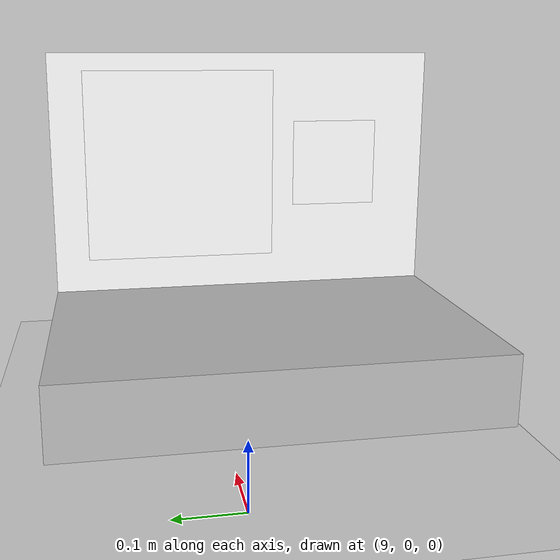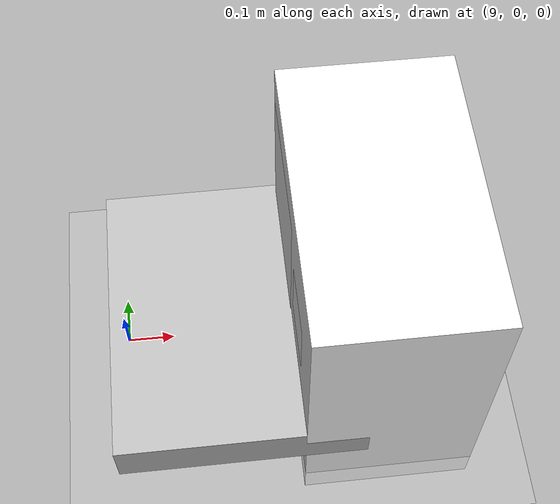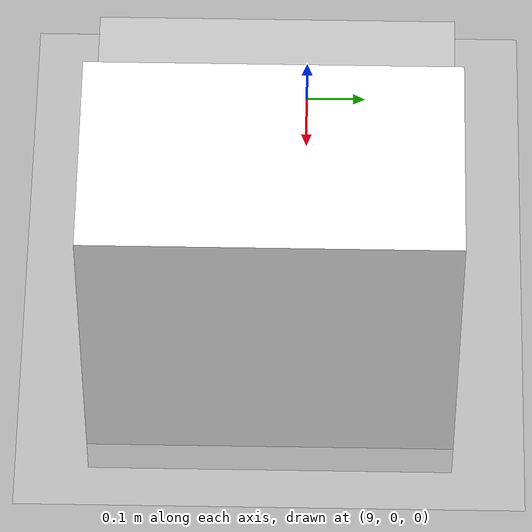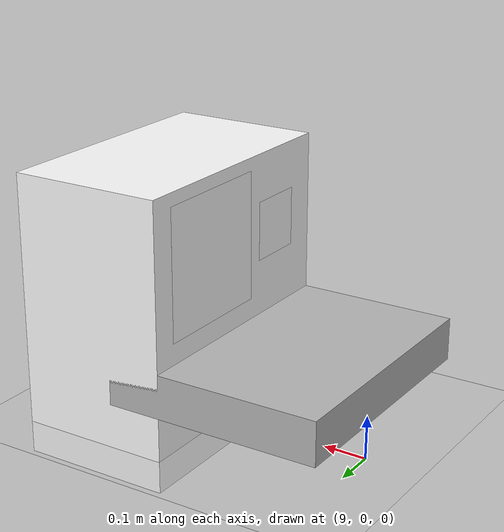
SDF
<sdf version="1.7">
 <world name="default">
  <light name="sun" type="directional">
   <pose>0 0 10 0 -0 0</pose>
   <diffuse>0.8 0.8 0.8 1</diffuse>
   <specular>0.2 0.2 0.2 1</specular>
   <attenuation>
    <range>1000</range>
    <constant>0.9</constant>
    <linear>0.01</linear>
    <quadratic>0.001</quadratic>
   </attenuation>
   <direction>-0.5 0.1 -0.9</direction>
   <spot><inner_angle>0</inner_angle><outer_angle>0</outer_angle><falloff>0</falloff></spot>
  </light>
  <model name="ground_plane">
   <static>1</static>
   <link name="link">
    <collision name="collision">
     <geometry><plane><normal>0 0 1</normal><size>100 100</size></plane></geometry>
     <surface><friction><ode><mu>100</mu><mu2>50</mu2></ode></friction></surface>
    </collision>
    <visual name="visual">
     <cast_shadows>0</cast_shadows>
     <geometry><plane><normal>0 0 1</normal><size>100 100</size></plane></geometry>
     <material>
      <script><uri>file://media/materials/scripts/gazebo.material</uri><name>Gazebo/Grey</name></script>
     </material>
    </visual>
   </link>
  </model>
  <gravity>0 0 -9.8</gravity>
  <magnetic_field>6e-06 2.3e-05 -4.2e-05</magnetic_field>
  <atmosphere type="adiabatic"/>
  <physics type="ode">
   <max_step_size>0.001</max_step_size>
   <real_time_factor>1</real_time_factor>
   <real_time_update_rate>1000</real_time_update_rate>
  </physics>
  <scene><ambient>0.4 0.4 0.4 1</ambient><background>0.7 0.7 0.7 1</background><shadows>1</shadows></scene>
  <spherical_coordinates>
   <surface_model>EARTH_WGS84</surface_model>
   <latitude_deg>0</latitude_deg>
   <longitude_deg>0</longitude_deg>
   <elevation>0</elevation>
   <heading_deg>0</heading_deg>
  </spherical_coordinates>
  <model name="Charging Dock With ArUco">
   <static>1</static>
   <link name="docking_station_link">
    <pose>0 0 0.25 0 -0 0</pose>
    <inertial>
     <mass>1</mass>
     <inertia><ixx>0.083</ixx><ixy>0</ixy><ixz>0</ixz><iyy>0.083</iyy><iyz>0</iyz><izz>0.083</izz></inertia>
    </inertial>
    <collision name="docking_station_collision">
     <geometry><box><size>0.35 0.6 0.65</size></box></geometry>
    </collision>
    <visual name="docking_station_visual">
     <geometry><box><size>0.35 0.6 0.65</size></box></geometry>
     <material>
      <ambient>1 1 1 1</ambient>
      <diffuse>1 1 1 1</diffuse>
      <specular>0 0 0 0</specular>
      <emissive>0 0 0 1</emissive>
     </material>
    </visual>
    <collision name="landing">
     <pose relative_to="docking_station_link">-0.3 0 -0.1 0 -0 0</pose>
     <geometry><box><size>0.5 0.6 0.1</size></box></geometry>
    </collision>
    <visual name="visual">
     <pose relative_to="docking_station_link">-0.3 0 -0.1 0 -0 0</pose>
     <geometry><box><size>0.5 0.6 0.1</size></box></geometry>
    </visual>
   </link>
   <link name="aruco_marker_link">
    <pose>-0.18 0.1 0.4 3.14159 1.57079 3.14159</pose>
    <visual name="visual">
     <geometry><box><size>0.296 0.296 1e-05</size></box></geometry>
     <material>
      <script>
       <uri>model://stationary_platform_with_aruco/materials/scripts</uri>
       <uri>model://stationary_platform_with_aruco/materials/textures</uri>
       <name>ArucoVisualMarker1/Marker</name>
      </script>
      <ambient>1 1 1 1</ambient>
      <diffuse>1 1 1 1</diffuse>
      <specular>0 0 0 1</specular>
      <emissive>1 1 1 0</emissive>
      <shader type="vertex"><normal_map>__default__</normal_map></shader>
     </material>
    </visual>
   </link>
   <link name="aruco_marker_link_2">
    <pose>-0.18 -0.15 0.4 3.14159 1.57079 3.14159</pose>
    <visual name="visual">
     <geometry><box><size>0.1355 0.1355 1e-05</size></box></geometry>
     <material>
      <script>
       <uri>model://stationary_platform_with_aruco/materials/scripts</uri>
       <uri>model://stationary_platform_with_aruco/materials/textures</uri>
       <name>ArucoVisualMarker2/Marker</name>
      </script>
      <ambient>1 1 1 1</ambient>
      <diffuse>1 1 1 1</diffuse>
      <specular>0 0 0 1</specular>
      <emissive>1 1 1 0</emissive>
      <shader type="vertex"><normal_map>__default__</normal_map></shader>
     </material>
    </visual>
   </link>
   <pose>9.53089 -0.051666 0 0 -0 0</pose>
  </model>
 </world>
</sdf>
